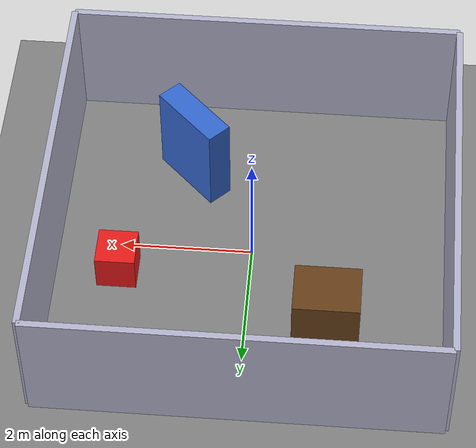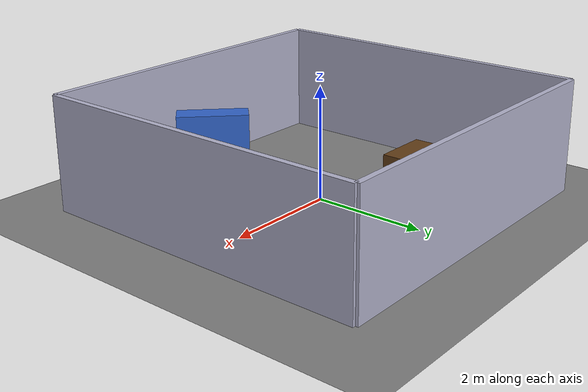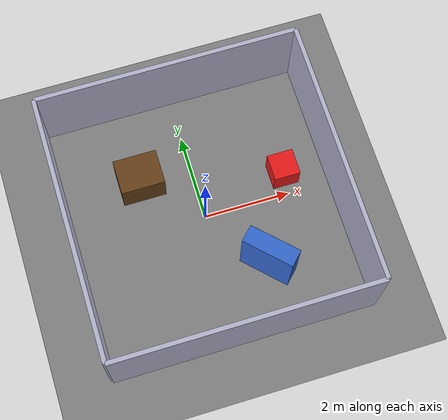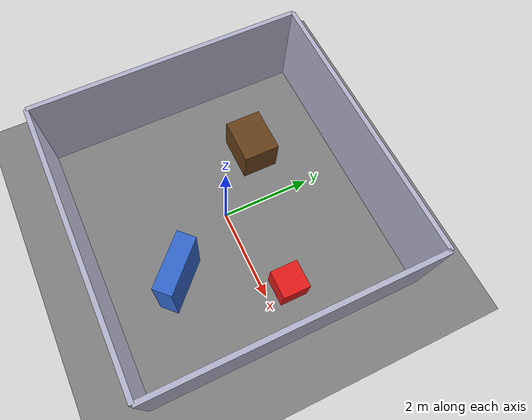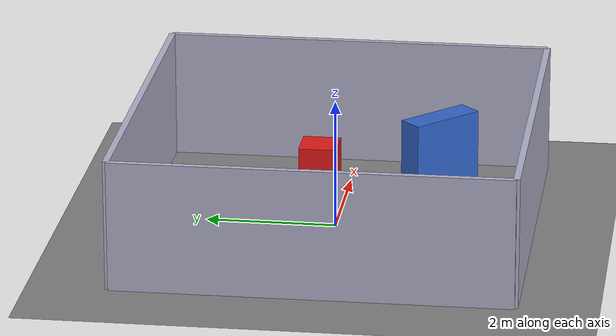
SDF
<?xml version="1.0" ?>
<sdf version="1.9">
  <world name="marcus_room_world">
    <physics type="ode">
      <real_time_update_rate>250.0</real_time_update_rate>
      <max_step_size>0.004</max_step_size>
      <real_time_factor>1.0</real_time_factor>
    </physics>

    <!-- Essential Plugins for Gazebo Harmonic -->
    <plugin filename="gz-sim-physics-system" name="gz::sim::systems::Physics"/>
    <plugin filename="gz-sim-sensors-system" name="gz::sim::systems::Sensors">
      <render_engine>ogre2</render_engine>
    </plugin>
    <plugin filename="gz-sim-scene-broadcaster-system" name="gz::sim::systems::SceneBroadcaster"/>
    <plugin filename="gz-sim-user-commands-system" name="gz::sim::systems::UserCommands"/>

    <!-- Light Source -->
    <light type="directional" name="sun">
      <cast_shadows>true</cast_shadows>
      <pose>0 0 10 0 0 0</pose>
      <diffuse>0.8 0.8 0.8 1</diffuse>
      <specular>0.2 0.2 0.2 1</specular>
      <attenuation>
        <range>1000</range>
        <constant>0.9</constant>
        <linear>0.01</linear>
        <quadratic>0.001</quadratic>
      </attenuation>
      <direction>-0.5 0.1 -0.9</direction>
    </light>

    <!-- Ground Plane -->
    <model name="ground_plane">
      <static>true</static>
      <link name="link">
        <collision name="collision">
          <geometry>
            <plane>
              <normal>0 0 1</normal>
              <size>20 20</size>
            </plane>
          </geometry>
        </collision>
        <visual name="visual">
          <geometry>
            <plane>
              <normal>0 0 1</normal>
              <size>20 20</size>
            </plane>
          </geometry>
          <material>
            <ambient>0.3 0.3 0.3 1</ambient>
            <diffuse>0.5 0.5 0.5 1</diffuse>
          </material>
        </visual>
      </link>
    </model>

    <!-- Wall North -->
    <model name="wall_north">
      <static>true</static>
      <pose>0 3.0 1.0 0 0 0</pose>
      <link name="link">
        <collision name="collision">
          <geometry><box><size>6.0 0.1 2.0</size></box></geometry>
        </collision>
        <visual name="visual">
          <geometry><box><size>6.0 0.1 2.0</size></box></geometry>
          <material><ambient>0.7 0.7 0.8 1</ambient></material>
        </visual>
      </link>
    </model>

    <!-- Wall South -->
    <model name="wall_south">
      <static>true</static>
      <pose>0 -3.0 1.0 0 0 0</pose>
      <link name="link">
        <collision name="collision">
          <geometry><box><size>6.0 0.1 2.0</size></box></geometry>
        </collision>
        <visual name="visual">
          <geometry><box><size>6.0 0.1 2.0</size></box></geometry>
          <material><ambient>0.7 0.7 0.8 1</ambient></material>
        </visual>
      </link>
    </model>

    <!-- Wall East -->
    <model name="wall_east">
      <static>true</static>
      <pose>3.0 0 1.0 0 0 0</pose>
      <link name="link">
        <collision name="collision">
          <geometry><box><size>0.1 6.0 2.0</size></box></geometry>
        </collision>
        <visual name="visual">
          <geometry><box><size>0.1 6.0 2.0</size></box></geometry>
          <material><ambient>0.7 0.7 0.8 1</ambient></material>
        </visual>
      </link>
    </model>

    <!-- Wall West -->
    <model name="wall_west">
      <static>true</static>
      <pose>-3.0 0 1.0 0 0 0</pose>
      <link name="link">
        <collision name="collision">
          <geometry><box><size>0.1 6.0 2.0</size></box></geometry>
        </collision>
        <visual name="visual">
          <geometry><box><size>0.1 6.0 2.0</size></box></geometry>
          <material><ambient>0.7 0.7 0.8 1</ambient></material>
        </visual>
      </link>
    </model>

    <!-- Obstacle Box 1 (Red) -->
    <model name="red_box_obstacle">
      <static>true</static>
      <pose>2.0 0.5 0.3 0 0 0</pose>
      <link name="link">
        <collision name="collision">
          <geometry><box><size>0.6 0.6 0.6</size></box></geometry>
        </collision>
        <visual name="visual">
          <geometry><box><size>0.6 0.6 0.6</size></box></geometry>
          <material><ambient>0.9 0.1 0.1 1</ambient></material>
        </visual>
      </link>
    </model>

    <!-- Table Obstacle -->
    <model name="table_obstacle">
      <static>true</static>
      <pose>-1.2 1.2 0.4 0 0 0</pose>
      <link name="link">
        <collision name="collision">
          <geometry><box><size>1.0 0.8 0.8</size></box></geometry>
        </collision>
        <visual name="visual">
          <geometry><box><size>1.0 0.8 0.8</size></box></geometry>
          <material><ambient>0.4 0.25 0.1 1</ambient></material>
        </visual>
      </link>
    </model>

    <!-- Bookshelf Wall Barrier -->
    <model name="bookshelf_barrier">
      <static>true</static>
      <pose>1.0 -1.5 0.75 0 0 0.785</pose>
      <link name="link">
        <collision name="collision">
          <geometry><box><size>0.4 1.2 1.5</size></box></geometry>
        </collision>
        <visual name="visual">
          <geometry><box><size>0.4 1.2 1.5</size></box></geometry>
          <material><ambient>0.2 0.4 0.8 1</ambient></material>
        </visual>
      </link>
    </model>

  </world>
</sdf>
